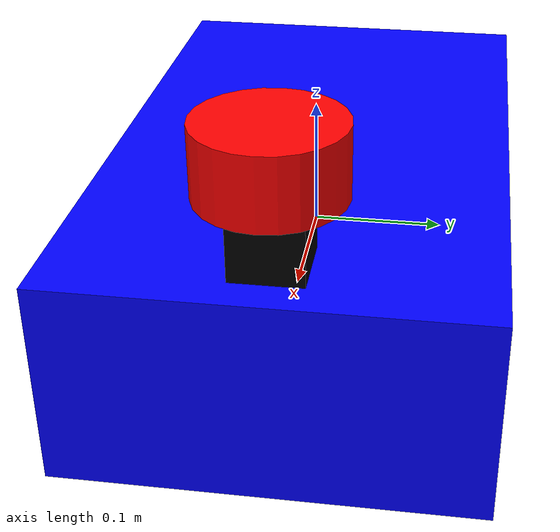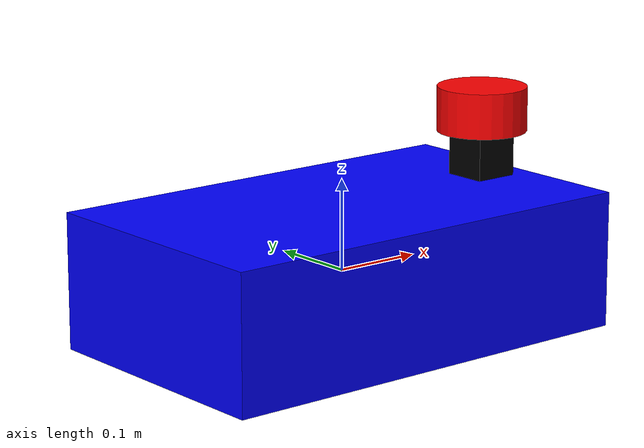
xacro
<?xml version="1.0"?>
<robot name="sensor_robot" xmlns:xacro="http://www.ros.org/wiki/xacro">
  <!-- Properties -->
  <xacro:property name="M_PI" value="3.1415926535897931"/>

  <!-- Base link -->
  <link name="base_link">
    <visual>
      <geometry>
        <box size="0.5 0.3 0.15"/>
      </geometry>
      <material name="blue">
        <color rgba="0 0 1 1"/>
      </material>
    </visual>
    <collision>
      <geometry>
        <box size="0.5 0.3 0.15"/>
      </geometry>
    </collision>
    <inertial>
      <mass value="2.0"/>
      <inertia ixx="0.1" ixy="0" ixz="0" iyy="0.1" iyz="0" izz="0.1"/>
    </inertial>
  </link>

  <!-- Camera link -->
  <link name="camera_link">
    <visual>
      <geometry>
        <box size="0.05 0.05 0.05"/>
      </geometry>
      <material name="black">
        <color rgba="0 0 0 1"/>
      </material>
    </visual>
    <collision>
      <geometry>
        <box size="0.05 0.05 0.05"/>
      </geometry>
    </collision>
    <inertial>
      <mass value="0.1"/>
      <inertia ixx="0.0001" ixy="0" ixz="0" iyy="0.0001" iyz="0" izz="0.0001"/>
    </inertial>
  </link>

  <!-- Camera joint -->
  <joint name="camera_joint" type="fixed">
    <parent link="base_link"/>
    <child link="camera_link"/>
    <origin xyz="0.2 0 0.1" rpy="0 0 0"/>
  </joint>

  <!-- LiDAR link -->
  <link name="lidar_link">
    <visual>
      <geometry>
        <cylinder radius="0.05" length="0.05"/>
      </geometry>
      <material name="red">
        <color rgba="1 0 0 1"/>
      </material>
    </visual>
    <collision>
      <geometry>
        <cylinder radius="0.05" length="0.05"/>
      </geometry>
    </collision>
    <inertial>
      <mass value="0.2"/>
      <inertia ixx="0.0002" ixy="0" ixz="0" iyy="0.0002" iyz="0" izz="0.0004"/>
    </inertial>
  </link>

  <!-- LiDAR joint -->
  <joint name="lidar_joint" type="fixed">
    <parent link="base_link"/>
    <child link="lidar_link"/>
    <origin xyz="0.2 0 0.15" rpy="0 0 0"/>
  </joint>

  <!-- IMU link -->
  <link name="imu_link">
    <visual>
      <geometry>
        <box size="0.02 0.02 0.02"/>
      </geometry>
      <material name="green">
        <color rgba="0 1 0 1"/>
      </material>
    </visual>
    <collision>
      <geometry>
        <box size="0.02 0.02 0.02"/>
      </geometry>
    </collision>
    <inertial>
      <mass value="0.05"/>
      <inertia ixx="0.00001" ixy="0" ixz="0" iyy="0.00001" iyz="0" izz="0.00001"/>
    </inertial>
  </link>

  <!-- IMU joint -->
  <joint name="imu_joint" type="fixed">
    <parent link="base_link"/>
    <child link="imu_link"/>
    <origin xyz="0 0 0.05" rpy="0 0 0"/>
  </joint>

  <!-- Gazebo materials -->
  <gazebo reference="base_link">
    <material>Gazebo/Blue</material>
  </gazebo>

  <gazebo reference="camera_link">
    <material>Gazebo/Black</material>
  </gazebo>

  <gazebo reference="lidar_link">
    <material>Gazebo/Red</material>
  </gazebo>

  <gazebo reference="imu_link">
    <material>Gazebo/Green</material>
  </gazebo>

  <!-- Camera sensor -->
  <gazebo reference="camera_link">
    <sensor name="camera" type="camera">
      <camera>
        <horizontal_fov>1.047</horizontal_fov>
        <image>
          <width>640</width>
          <height>480</height>
          <format>R8G8B8</format>
        </image>
        <clip>
          <near>0.1</near>
          <far>30</far>
        </clip>
      </camera>
      <plugin name="camera_controller" filename="libgazebo_ros_camera.so">
        <ros>
          <namespace>/camera</namespace>
          <remapping>~/image_raw:=image</remapping>
        </ros>
        <update_rate>30</update_rate>
      </plugin>
    </sensor>
  </gazebo>

  <!-- LiDAR sensor -->
  <gazebo reference="lidar_link">
    <sensor name="lidar" type="ray">
      <ray>
        <scan>
          <horizontal>
            <samples>720</samples>
            <resolution>1</resolution>
            <min_angle>-1.570796</min_angle>
            <max_angle>1.570796</max_angle>
          </horizontal>
        </scan>
        <range>
          <min>0.1</min>
          <max>30.0</max>
          <resolution>0.01</resolution>
        </range>
      </ray>
      <plugin name="lidar_controller" filename="libgazebo_ros_laser.so">
        <ros>
          <namespace>/lidar</namespace>
          <remapping>~/out:=scan</remapping>
        </ros>
        <update_rate>10</update_rate>
      </plugin>
    </sensor>
  </gazebo>

  <!-- IMU sensor -->
  <gazebo reference="imu_link">
    <sensor name="imu" type="imu">
      <always_on>true</always_on>
      <update_rate>100</update_rate>
      <imu>
        <angular_velocity>
          <x>
            <noise type="gaussian">
              <mean>0.0</mean>
              <stddev>0.0017</stddev>
            </noise>
          </x>
          <y>
            <noise type="gaussian">
              <mean>0.0</mean>
              <stddev>0.0017</stddev>
            </noise>
          </y>
          <z>
            <noise type="gaussian">
              <mean>0.0</mean>
              <stddev>0.0017</stddev>
            </noise>
          </z>
        </angular_velocity>
        <linear_acceleration>
          <x>
            <noise type="gaussian">
              <mean>0.0</mean>
              <stddev>0.017</stddev>
            </noise>
          </x>
          <y>
            <noise type="gaussian">
              <mean>0.0</mean>
              <stddev>0.017</stddev>
            </noise>
          </y>
          <z>
            <noise type="gaussian">
              <mean>0.0</mean>
              <stddev>0.017</stddev>
            </noise>
          </z>
        </linear_acceleration>
      </imu>
      <plugin name="imu_controller" filename="libgazebo_ros_imu.so">
        <ros>
          <namespace>/imu</namespace>
        </ros>
      </plugin>
    </sensor>
  </gazebo>

  <!-- Joint state publisher -->
  <gazebo>
    <plugin name="joint_state_publisher" filename="libgazebo_ros_joint_state_publisher.so">
      <ros>
        <namespace>/sensor_robot</namespace>
      </ros>
      <update_rate>30</update_rate>
    </plugin>
  </gazebo>
</robot>
